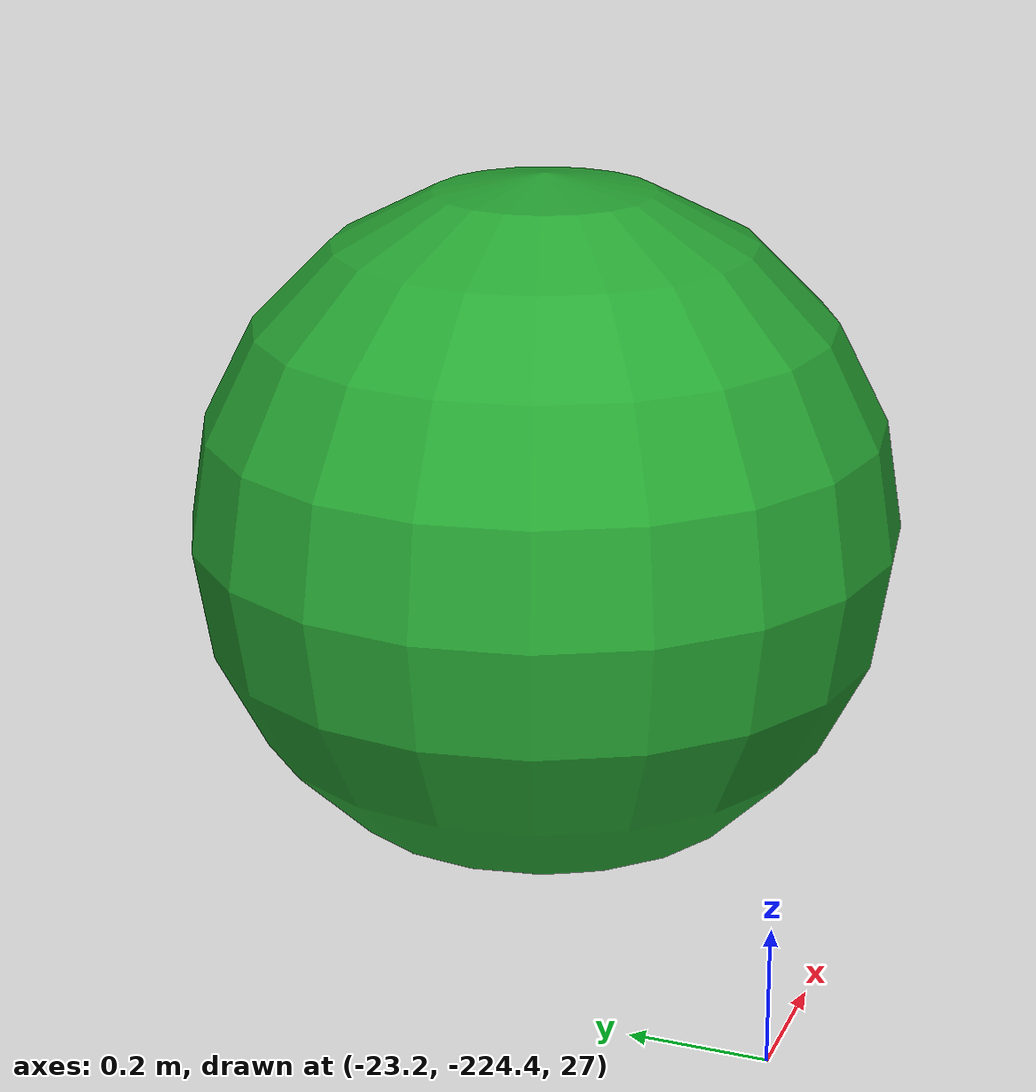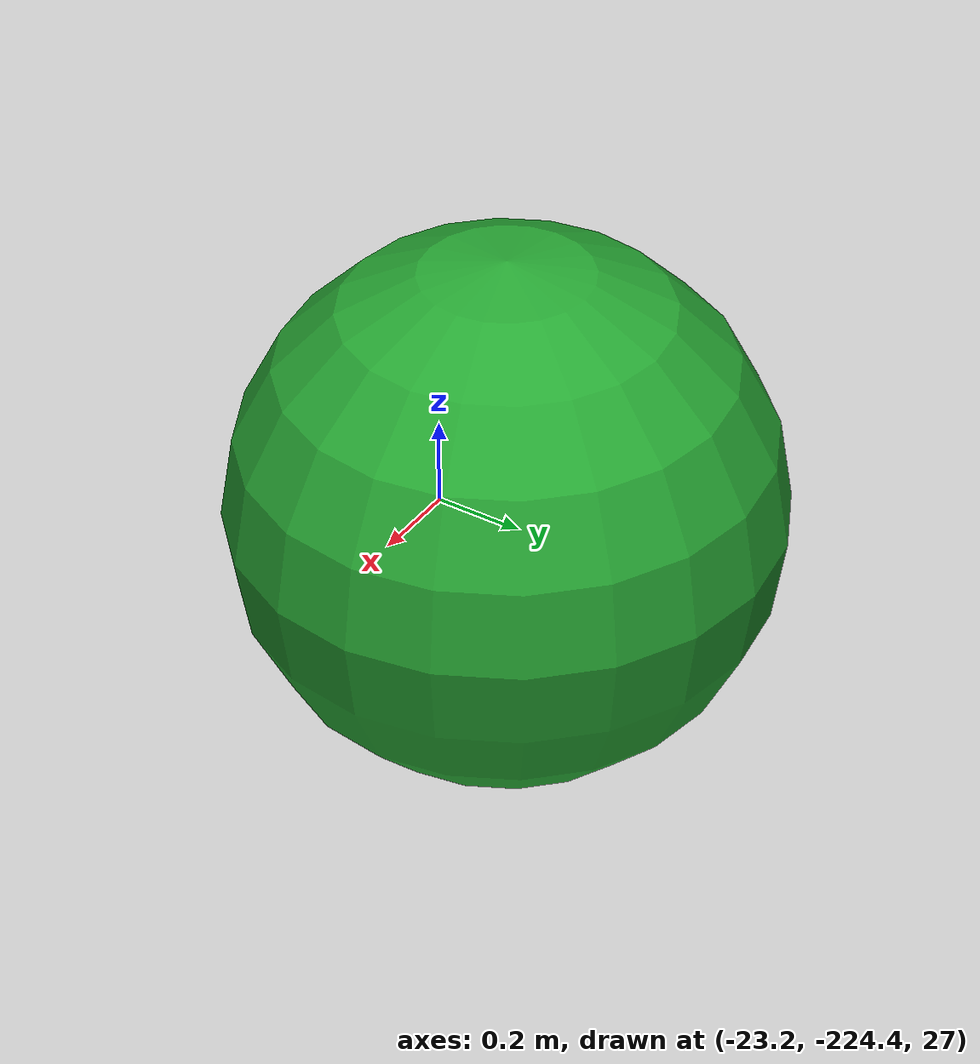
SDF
<?xml version='1.0'?>
<sdf version='1.6'>
  <model name='sphera'>
    <link name='link_2'>
      <inertial>
        <mass>1.31856</mass>
        <inertia>
          <ixx>0.158556</ixx>
          <ixy>0</ixy>
          <ixz>0</ixz>
          <iyy>0.158556</iyy>
          <iyz>0</iyz>
          <izz>0.158556</izz>
        </inertia>
        <pose frame=''>0 0 0 0 -0 0</pose>
      </inertial>
      <pose frame=''>-22.6411 -223.87 27.5356 5e-06 -0 0</pose>
      <gravity>0</gravity>
      <self_collide>0</self_collide>
      <kinematic>0</kinematic>
      <enable_wind>0</enable_wind>
      <visual name='visual'>
        <pose frame=''>0 0 0 0 -0 0</pose>
        <geometry>
          <sphere>
            <radius>0.55</radius>
          </sphere>
        </geometry>
        <material>
          <lighting>1</lighting>
          <script>
            <uri>file://media/materials/scripts/gazebo.material</uri>
            <name>Gazebo/Green</name>
          </script>
          <shader type='pixel'>
            <normal_map>__default__</normal_map>
          </shader>
          <ambient>0 0.9 0 1</ambient>
          <diffuse>0 0.9 0 1</diffuse>
          <specular>0 0.9 0 1</specular>
          <emissive>0 0 0 1</emissive>
        </material>
        <transparency>0</transparency>
        <cast_shadows>1</cast_shadows>
      </visual>
      <collision name='collision'>
        <laser_retro>0</laser_retro>
        <max_contacts>10</max_contacts>
        <pose frame=''>0 0 0 0 -0 0</pose>
        <geometry>
          <sphere>
            <radius>0.55</radius>
          </sphere>
        </geometry>
        <surface>
          <friction>
            <ode>
              <mu>1</mu>
              <mu2>1</mu2>
              <fdir1>0 0 0</fdir1>
              <slip1>0</slip1>
              <slip2>0</slip2>
            </ode>
            <torsional>
              <coefficient>1</coefficient>
              <patch_radius>0</patch_radius>
              <surface_radius>0</surface_radius>
              <use_patch_radius>1</use_patch_radius>
              <ode>
                <slip>0</slip>
              </ode>
            </torsional>
          </friction>
          <bounce>
            <restitution_coefficient>0</restitution_coefficient>
            <threshold>1e+06</threshold>
          </bounce>
          <contact>
            <collide_without_contact>0</collide_without_contact>
            <collide_without_contact_bitmask>1</collide_without_contact_bitmask>
            <collide_bitmask>1</collide_bitmask>
            <ode>
              <soft_cfm>0</soft_cfm>
              <soft_erp>0.2</soft_erp>
              <kp>1e+13</kp>
              <kd>1</kd>
              <max_vel>0.01</max_vel>
              <min_depth>0</min_depth>
            </ode>
            <bullet>
              <split_impulse>1</split_impulse>
              <split_impulse_penetration_threshold>-0.01</split_impulse_penetration_threshold>
              <soft_cfm>0</soft_cfm>
              <soft_erp>0.2</soft_erp>
              <kp>1e+13</kp>
              <kd>1</kd>
            </bullet>
          </contact>
        </surface>
      </collision>
    </link>
  </model>
</sdf>
